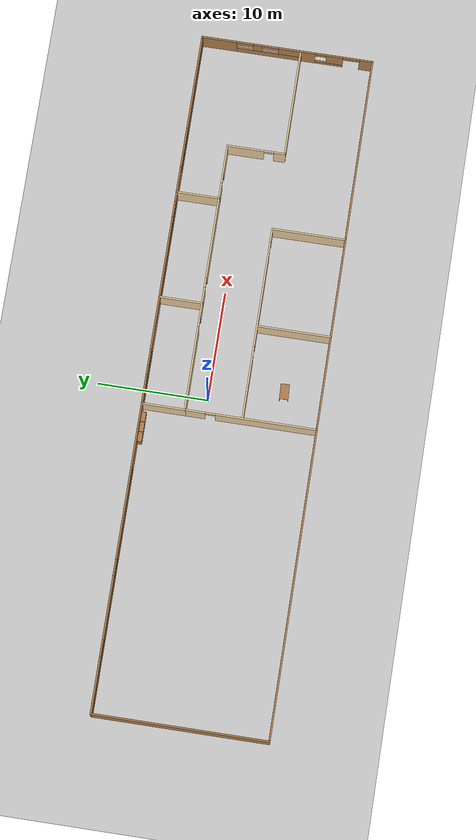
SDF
<sdf version="1.6">
 <world name="default">
  <model name="ground_plane">
   <static>1</static>
   <link name="link">
    <collision name="collision">
     <geometry><plane><normal>0 0 1</normal><size>100 100</size></plane></geometry>
     <surface><friction><ode><mu>100</mu><mu2>50</mu2></ode></friction></surface>
    </collision>
    <visual name="visual">
     <cast_shadows>0</cast_shadows>
     <geometry><plane><normal>0 0 1</normal><size>100 100</size></plane></geometry>
     <material>
      <script><uri>file://media/materials/scripts/gazebo.material</uri><name>Gazebo/Grey</name></script>
     </material>
    </visual>
   </link>
  </model>
  <model name="mymodel_0">
   <pose>1.7436 -2.15546 0 0 -0 0</pose>
   <link name="Wall_119">
    <pose>21.35 1.375 0 0 0 -1.5708</pose>
    <visual name="Wall_119_Visual_0">
     <pose>-0.987502 0 1.25 0 -0 0</pose>
     <geometry><box><size>3.425 0.15 2.5</size></box></geometry>
     <material>
      <script><uri>file://media/materials/scripts/gazebo.material</uri><name>Gazebo/Grey</name></script>
      <ambient>0.921569 0.807843 0.615686 1</ambient>
     </material>
    </visual>
    <collision name="Wall_119_Collision_0">
     <geometry><box><size>3.425 0.15 2.5</size></box></geometry>
     <pose>-0.987502 0 1.25 0 -0 0</pose>
    </collision>
    <visual name="Wall_119_Visual_1">
     <pose>2.1625 0 1.25 0 -0 0</pose>
     <geometry><box><size>1.075 0.15 2.5</size></box></geometry>
     <material>
      <script><uri>file://media/materials/scripts/gazebo.material</uri><name>Gazebo/Grey</name></script>
      <ambient>0.921569 0.807843 0.615686 1</ambient>
     </material>
    </visual>
    <collision name="Wall_119_Collision_1">
     <geometry><box><size>1.075 0.15 2.5</size></box></geometry>
     <pose>2.1625 0 1.25 0 -0 0</pose>
    </collision>
    <visual name="Wall_119_Visual_2">
     <pose>1.175 0 2.25 0 -0 0</pose>
     <geometry><box><size>0.9 0.15 0.5</size></box></geometry>
     <material>
      <script><uri>file://media/materials/scripts/gazebo.material</uri><name>Gazebo/Grey</name></script>
      <ambient>0.921569 0.807843 0.615686 1</ambient>
     </material>
    </visual>
    <collision name="Wall_119_Collision_2">
     <geometry><box><size>0.9 0.15 0.5</size></box></geometry>
     <pose>1.175 0 2.25 0 -0 0</pose>
    </collision>
   </link>
   <link name="Wall_123">
    <collision name="Wall_123_Collision">
     <geometry><box><size>10 0.15 2.5</size></box></geometry>
     <pose>0 0 1.25 0 -0 0</pose>
    </collision>
    <visual name="Wall_123_Visual">
     <pose>0 0 1.25 0 -0 0</pose>
     <geometry><box><size>10 0.15 2.5</size></box></geometry>
     <material>
      <script><uri>file://media/materials/scripts/gazebo.material</uri><name>Gazebo/Grey</name></script>
      <ambient>0.921569 0.807843 0.615686 1</ambient>
     </material>
    </visual>
    <pose>26.275 -1.25 0 0 -0 0</pose>
   </link>
   <link name="Wall_125">
    <pose>1.575 7.85 0 0 -0 3.14159</pose>
    <visual name="Wall_125_Visual_0">
     <pose>-2.52053 0 1.25 0 -0 0</pose>
     <geometry><box><size>4.95895 0.15 2.5</size></box></geometry>
     <material>
      <script><uri>file://media/materials/scripts/gazebo.material</uri><name>Gazebo/Wood</name></script>
      <ambient>0.996078 0.47451 0.0196078 1</ambient>
     </material>
    </visual>
    <collision name="Wall_125_Collision_0">
     <geometry><box><size>4.95895 0.15 2.5</size></box></geometry>
     <pose>-2.52053 0 1.25 0 -0 0</pose>
    </collision>
    <visual name="Wall_125_Visual_1">
     <pose>2.47947 0 0.5 0 -0 0</pose>
     <geometry><box><size>5.04105 0.15 1</size></box></geometry>
     <material>
      <script><uri>file://media/materials/scripts/gazebo.material</uri><name>Gazebo/Wood</name></script>
      <ambient>0.996078 0.47451 0.0196078 1</ambient>
     </material>
    </visual>
    <collision name="Wall_125_Collision_1">
     <geometry><box><size>5.04105 0.15 1</size></box></geometry>
     <pose>2.47947 0 0.5 0 -0 0</pose>
    </collision>
    <visual name="Wall_125_Visual_2">
     <pose>1.88216 0 1.75 0 -0 0</pose>
     <geometry><box><size>0.846424 0.15 1.5</size></box></geometry>
     <material>
      <script><uri>file://media/materials/scripts/gazebo.material</uri><name>Gazebo/Wood</name></script>
      <ambient>0.996078 0.47451 0.0196078 1</ambient>
     </material>
    </visual>
    <collision name="Wall_125_Collision_2">
     <geometry><box><size>0.846424 0.15 1.5</size></box></geometry>
     <pose>1.88216 0 1.75 0 -0 0</pose>
    </collision>
    <visual name="Wall_125_Visual_3">
     <pose>4.40268 0 1.75 0 -0 0</pose>
     <geometry><box><size>1.19463 0.15 1.5</size></box></geometry>
     <material>
      <script><uri>file://media/materials/scripts/gazebo.material</uri><name>Gazebo/Wood</name></script>
      <ambient>0.996078 0.47451 0.0196078 1</ambient>
     </material>
    </visual>
    <collision name="Wall_125_Collision_3">
     <geometry><box><size>1.19463 0.15 1.5</size></box></geometry>
     <pose>4.40268 0 1.75 0 -0 0</pose>
    </collision>
    <visual name="Wall_125_Visual_4">
     <pose>0.708946 0 2.15 0 -0 0</pose>
     <geometry><box><size>1.5 0.15 0.7</size></box></geometry>
     <material>
      <script><uri>file://media/materials/scripts/gazebo.material</uri><name>Gazebo/Wood</name></script>
      <ambient>0.996078 0.47451 0.0196078 1</ambient>
     </material>
    </visual>
    <collision name="Wall_125_Collision_4">
     <geometry><box><size>1.5 0.15 0.7</size></box></geometry>
     <pose>0.708946 0 2.15 0 -0 0</pose>
    </collision>
    <visual name="Wall_125_Visual_5">
     <pose>3.05537 0 2.15 0 -0 0</pose>
     <geometry><box><size>1.5 0.15 0.7</size></box></geometry>
     <material>
      <script><uri>file://media/materials/scripts/gazebo.material</uri><name>Gazebo/Wood</name></script>
      <ambient>0.996078 0.47451 0.0196078 1</ambient>
     </material>
    </visual>
    <collision name="Wall_125_Collision_5">
     <geometry><box><size>1.5 0.15 0.7</size></box></geometry>
     <pose>3.05537 0 2.15 0 -0 0</pose>
    </collision>
   </link>
   <link name="Wall_127">
    <collision name="Wall_127_Collision">
     <geometry><box><size>4 0.15 2.5</size></box></geometry>
     <pose>0 0 1.25 0 -0 0</pose>
    </collision>
    <visual name="Wall_127_Visual">
     <pose>0 0 1.25 0 -0 0</pose>
     <geometry><box><size>4 0.15 2.5</size></box></geometry>
     <material>
      <script><uri>file://media/materials/scripts/gazebo.material</uri><name>Gazebo/Grey</name></script>
      <ambient>0.921569 0.807843 0.615686 1</ambient>
     </material>
    </visual>
    <pose>-3.35 5.925 0 0 0 -1.5708</pose>
   </link>
   <link name="Wall_129">
    <pose>1.575 4 0 0 -0 0</pose>
    <visual name="Wall_129_Visual_0">
     <pose>-1.15906 0 1.25 0 -0 0</pose>
     <geometry><box><size>7.68187 0.15 2.5</size></box></geometry>
     <material>
      <script><uri>file://media/materials/scripts/gazebo.material</uri><name>Gazebo/Grey</name></script>
      <ambient>0.921569 0.807843 0.615686 1</ambient>
     </material>
    </visual>
    <collision name="Wall_129_Collision_0">
     <geometry><box><size>7.68187 0.15 2.5</size></box></geometry>
     <pose>-1.15906 0 1.25 0 -0 0</pose>
    </collision>
    <visual name="Wall_129_Visual_1">
     <pose>4.29094 0 1.25 0 -0 0</pose>
     <geometry><box><size>1.41813 0.15 2.5</size></box></geometry>
     <material>
      <script><uri>file://media/materials/scripts/gazebo.material</uri><name>Gazebo/Grey</name></script>
      <ambient>0.921569 0.807843 0.615686 1</ambient>
     </material>
    </visual>
    <collision name="Wall_129_Collision_1">
     <geometry><box><size>1.41813 0.15 2.5</size></box></geometry>
     <pose>4.29094 0 1.25 0 -0 0</pose>
    </collision>
    <visual name="Wall_129_Visual_2">
     <pose>3.13187 0 2.25 0 -0 0</pose>
     <geometry><box><size>0.9 0.15 0.5</size></box></geometry>
     <material>
      <script><uri>file://media/materials/scripts/gazebo.material</uri><name>Gazebo/Grey</name></script>
      <ambient>0.921569 0.807843 0.615686 1</ambient>
     </material>
    </visual>
    <collision name="Wall_129_Collision_2">
     <geometry><box><size>0.9 0.15 0.5</size></box></geometry>
     <pose>3.13187 0 2.25 0 -0 0</pose>
    </collision>
   </link>
   <link name="Wall_144">
    <pose>-17.275 7.85 0 0 -0 3.14159</pose>
    <visual name="Wall_144_Visual_0">
     <pose>-11.0233 0 1.25 0 -0 0</pose>
     <geometry><box><size>5.95337 0.15 2.5</size></box></geometry>
     <material>
      <script><uri>file://media/materials/scripts/gazebo.material</uri><name>Gazebo/Wood</name></script>
      <ambient>0.996078 0.47451 0.0196078 1</ambient>
     </material>
    </visual>
    <collision name="Wall_144_Collision_0">
     <geometry><box><size>5.95337 0.15 2.5</size></box></geometry>
     <pose>-11.0233 0 1.25 0 -0 0</pose>
    </collision>
    <visual name="Wall_144_Visual_1">
     <pose>2.97669 0 0.5 0 -0 0</pose>
     <geometry><box><size>22.0466 0.15 1</size></box></geometry>
     <material>
      <script><uri>file://media/materials/scripts/gazebo.material</uri><name>Gazebo/Wood</name></script>
      <ambient>0.996078 0.47451 0.0196078 1</ambient>
     </material>
    </visual>
    <collision name="Wall_144_Collision_1">
     <geometry><box><size>22.0466 0.15 1</size></box></geometry>
     <pose>2.97669 0 0.5 0 -0 0</pose>
    </collision>
    <visual name="Wall_144_Visual_2">
     <pose>-3.18177 0 1.75 0 -0 0</pose>
     <geometry><box><size>6.72973 0.15 1.5</size></box></geometry>
     <material>
      <script><uri>file://media/materials/scripts/gazebo.material</uri><name>Gazebo/Wood</name></script>
      <ambient>0.996078 0.47451 0.0196078 1</ambient>
     </material>
    </visual>
    <collision name="Wall_144_Collision_2">
     <geometry><box><size>6.72973 0.15 1.5</size></box></geometry>
     <pose>-3.18177 0 1.75 0 -0 0</pose>
    </collision>
    <visual name="Wall_144_Visual_3">
     <pose>4.53578 0 1.75 0 -0 0</pose>
     <geometry><box><size>5.70537 0.15 1.5</size></box></geometry>
     <material>
      <script><uri>file://media/materials/scripts/gazebo.material</uri><name>Gazebo/Wood</name></script>
      <ambient>0.996078 0.47451 0.0196078 1</ambient>
     </material>
    </visual>
    <collision name="Wall_144_Collision_3">
     <geometry><box><size>5.70537 0.15 1.5</size></box></geometry>
     <pose>4.53578 0 1.75 0 -0 0</pose>
    </collision>
    <visual name="Wall_144_Visual_4">
     <pose>11.4442 0 1.75 0 -0 0</pose>
     <geometry><box><size>5.11153 0.15 1.5</size></box></geometry>
     <material>
      <script><uri>file://media/materials/scripts/gazebo.material</uri><name>Gazebo/Wood</name></script>
      <ambient>0.996078 0.47451 0.0196078 1</ambient>
     </material>
    </visual>
    <collision name="Wall_144_Collision_4">
     <geometry><box><size>5.11153 0.15 1.5</size></box></geometry>
     <pose>11.4442 0 1.75 0 -0 0</pose>
    </collision>
    <visual name="Wall_144_Visual_5">
     <pose>-7.29663 0 2.15 0 -0 0</pose>
     <geometry><box><size>1.5 0.15 0.7</size></box></geometry>
     <material>
      <script><uri>file://media/materials/scripts/gazebo.material</uri><name>Gazebo/Wood</name></script>
      <ambient>0.996078 0.47451 0.0196078 1</ambient>
     </material>
    </visual>
    <collision name="Wall_144_Collision_5">
     <geometry><box><size>1.5 0.15 0.7</size></box></geometry>
     <pose>-7.29663 0 2.15 0 -0 0</pose>
    </collision>
    <visual name="Wall_144_Visual_6">
     <pose>0.933096 0 2.15 0 -0 0</pose>
     <geometry><box><size>1.5 0.15 0.7</size></box></geometry>
     <material>
      <script><uri>file://media/materials/scripts/gazebo.material</uri><name>Gazebo/Wood</name></script>
      <ambient>0.996078 0.47451 0.0196078 1</ambient>
     </material>
    </visual>
    <collision name="Wall_144_Collision_6">
     <geometry><box><size>1.5 0.15 0.7</size></box></geometry>
     <pose>0.933096 0 2.15 0 -0 0</pose>
    </collision>
    <visual name="Wall_144_Visual_7">
     <pose>8.13847 0 2.15 0 -0 0</pose>
     <geometry><box><size>1.5 0.15 0.7</size></box></geometry>
     <material>
      <script><uri>file://media/materials/scripts/gazebo.material</uri><name>Gazebo/Wood</name></script>
      <ambient>0.996078 0.47451 0.0196078 1</ambient>
     </material>
    </visual>
    <collision name="Wall_144_Collision_7">
     <geometry><box><size>1.5 0.15 0.7</size></box></geometry>
     <pose>8.13847 0 2.15 0 -0 0</pose>
    </collision>
   </link>
   <link name="Wall_145">
    <collision name="Wall_145_Collision">
     <geometry><box><size>15.85 0.15 2.5</size></box></geometry>
     <pose>0 0 1.25 0 -0 0</pose>
    </collision>
    <visual name="Wall_145_Visual">
     <pose>0 0 1.25 0 -0 0</pose>
     <geometry><box><size>15.85 0.15 2.5</size></box></geometry>
     <material>
      <script><uri>file://media/materials/scripts/gazebo.material</uri><name>Gazebo/Wood</name></script>
      <ambient>0.996078 0.47451 0.0196078 1</ambient>
     </material>
    </visual>
    <pose>-31.2 0 0 0 0 -1.5708</pose>
   </link>
   <link name="Wall_148">
    <pose>-3.35 -1.925 0 0 0 -1.5708</pose>
    <visual name="Wall_148_Visual_0">
     <pose>-5.0473 0 1.25 0 -0 0</pose>
     <geometry><box><size>1.90541 0.15 2.5</size></box></geometry>
     <material>
      <script><uri>file://media/materials/scripts/gazebo.material</uri><name>Gazebo/Grey</name></script>
      <ambient>0.921569 0.807843 0.615686 1</ambient>
     </material>
    </visual>
    <collision name="Wall_148_Collision_0">
     <geometry><box><size>1.90541 0.15 2.5</size></box></geometry>
     <pose>-5.0473 0 1.25 0 -0 0</pose>
    </collision>
    <visual name="Wall_148_Visual_1">
     <pose>1.4027 0 1.25 0 -0 0</pose>
     <geometry><box><size>9.19459 0.15 2.5</size></box></geometry>
     <material>
      <script><uri>file://media/materials/scripts/gazebo.material</uri><name>Gazebo/Grey</name></script>
      <ambient>0.921569 0.807843 0.615686 1</ambient>
     </material>
    </visual>
    <collision name="Wall_148_Collision_1">
     <geometry><box><size>9.19459 0.15 2.5</size></box></geometry>
     <pose>1.4027 0 1.25 0 -0 0</pose>
    </collision>
    <visual name="Wall_148_Visual_2">
     <pose>-3.64459 0 2.25 0 -0 0</pose>
     <geometry><box><size>0.9 0.15 0.5</size></box></geometry>
     <material>
      <script><uri>file://media/materials/scripts/gazebo.material</uri><name>Gazebo/Grey</name></script>
      <ambient>0.921569 0.807843 0.615686 1</ambient>
     </material>
    </visual>
    <collision name="Wall_148_Collision_2">
     <geometry><box><size>0.9 0.15 0.5</size></box></geometry>
     <pose>-3.64459 0 2.25 0 -0 0</pose>
    </collision>
   </link>
   <link name="Wall_160">
    <pose>5.52431 -1.18597 0 0 0 -3e-06</pose>
    <visual name="Wall_160_Visual_0">
     <pose>-5.96657 0 1.25 0 -0 0</pose>
     <geometry><box><size>5.67479 0.15 2.5</size></box></geometry>
     <material>
      <script><uri>file://media/materials/scripts/gazebo.material</uri><name>Gazebo/Grey</name></script>
      <ambient>0.921569 0.807843 0.615686 1</ambient>
     </material>
    </visual>
    <collision name="Wall_160_Collision_0">
     <geometry><box><size>5.67479 0.15 2.5</size></box></geometry>
     <pose>-5.96657 0 1.25 0 -0 0</pose>
    </collision>
    <visual name="Wall_160_Visual_1">
     <pose>2.18678 0 1.25 0 -0 0</pose>
     <geometry><box><size>8.83193 0.15 2.5</size></box></geometry>
     <material>
      <script><uri>file://media/materials/scripts/gazebo.material</uri><name>Gazebo/Grey</name></script>
      <ambient>0.921569 0.807843 0.615686 1</ambient>
     </material>
    </visual>
    <collision name="Wall_160_Collision_1">
     <geometry><box><size>8.83193 0.15 2.5</size></box></geometry>
     <pose>2.18678 0 1.25 0 -0 0</pose>
    </collision>
    <visual name="Wall_160_Visual_2">
     <pose>8.15336 0 1.25 0 -0 0</pose>
     <geometry><box><size>1.30122 0.15 2.5</size></box></geometry>
     <material>
      <script><uri>file://media/materials/scripts/gazebo.material</uri><name>Gazebo/Grey</name></script>
      <ambient>0.921569 0.807843 0.615686 1</ambient>
     </material>
    </visual>
    <collision name="Wall_160_Collision_2">
     <geometry><box><size>1.30122 0.15 2.5</size></box></geometry>
     <pose>8.15336 0 1.25 0 -0 0</pose>
    </collision>
    <visual name="Wall_160_Visual_3">
     <pose>-2.67918 0 2.25 0 -0 0</pose>
     <geometry><box><size>0.9 0.15 0.5</size></box></geometry>
     <material>
      <script><uri>file://media/materials/scripts/gazebo.material</uri><name>Gazebo/Grey</name></script>
      <ambient>0.921569 0.807843 0.615686 1</ambient>
     </material>
    </visual>
    <collision name="Wall_160_Collision_3">
     <geometry><box><size>0.9 0.15 0.5</size></box></geometry>
     <pose>-2.67918 0 2.25 0 -0 0</pose>
    </collision>
    <visual name="Wall_160_Visual_4">
     <pose>7.05275 0 2.25 0 -0 0</pose>
     <geometry><box><size>0.9 0.15 0.5</size></box></geometry>
     <material>
      <script><uri>file://media/materials/scripts/gazebo.material</uri><name>Gazebo/Grey</name></script>
      <ambient>0.921569 0.807843 0.615686 1</ambient>
     </material>
    </visual>
    <collision name="Wall_160_Collision_4">
     <geometry><box><size>0.9 0.15 0.5</size></box></geometry>
     <pose>7.05275 0 2.25 0 -0 0</pose>
    </collision>
   </link>
   <link name="Wall_166">
    <pose>31.2 -4.55 0 0 0 -1.5708</pose>
    <visual name="Wall_166_Visual_0">
     <pose>-2.6617 0 1.25 0 -0 0</pose>
     <geometry><box><size>1.4266 0.15 2.5</size></box></geometry>
     <material>
      <script><uri>file://media/materials/scripts/gazebo.material</uri><name>Gazebo/Wood</name></script>
      <ambient>0.996078 0.47451 0.0196078 1</ambient>
     </material>
    </visual>
    <collision name="Wall_166_Collision_0">
     <geometry><box><size>1.4266 0.15 2.5</size></box></geometry>
     <pose>-2.6617 0 1.25 0 -0 0</pose>
    </collision>
    <visual name="Wall_166_Visual_1">
     <pose>2.74194 0 1.25 0 -0 0</pose>
     <geometry><box><size>1.26611 0.15 2.5</size></box></geometry>
     <material>
      <script><uri>file://media/materials/scripts/gazebo.material</uri><name>Gazebo/Wood</name></script>
      <ambient>0.996078 0.47451 0.0196078 1</ambient>
     </material>
    </visual>
    <collision name="Wall_166_Collision_1">
     <geometry><box><size>1.26611 0.15 2.5</size></box></geometry>
     <pose>2.74194 0 1.25 0 -0 0</pose>
    </collision>
    <visual name="Wall_166_Visual_2">
     <pose>-0.669753 0 0.25 0 -0 0</pose>
     <geometry><box><size>2.55729 0.15 0.5</size></box></geometry>
     <material>
      <script><uri>file://media/materials/scripts/gazebo.material</uri><name>Gazebo/Wood</name></script>
      <ambient>0.996078 0.47451 0.0196078 1</ambient>
     </material>
    </visual>
    <collision name="Wall_166_Collision_2">
     <geometry><box><size>2.55729 0.15 0.5</size></box></geometry>
     <pose>-0.669753 0 0.25 0 -0 0</pose>
    </collision>
    <visual name="Wall_166_Visual_3">
     <pose>-0.169753 0 1.5 0 -0 0</pose>
     <geometry><box><size>1.55729 0.15 2</size></box></geometry>
     <material>
      <script><uri>file://media/materials/scripts/gazebo.material</uri><name>Gazebo/Wood</name></script>
      <ambient>0.996078 0.47451 0.0196078 1</ambient>
     </material>
    </visual>
    <collision name="Wall_166_Collision_3">
     <geometry><box><size>1.55729 0.15 2</size></box></geometry>
     <pose>-0.169753 0 1.5 0 -0 0</pose>
    </collision>
    <visual name="Wall_166_Visual_4">
     <pose>-1.4484 0 2.25 0 -0 0</pose>
     <geometry><box><size>1 0.15 0.5</size></box></geometry>
     <material>
      <script><uri>file://media/materials/scripts/gazebo.material</uri><name>Gazebo/Wood</name></script>
      <ambient>0.996078 0.47451 0.0196078 1</ambient>
     </material>
    </visual>
    <collision name="Wall_166_Collision_4">
     <geometry><box><size>1 0.15 0.5</size></box></geometry>
     <pose>-1.4484 0 2.25 0 -0 0</pose>
    </collision>
    <visual name="Wall_166_Visual_5">
     <pose>1.35889 0 2.25 0 -0 0</pose>
     <geometry><box><size>1.5 0.15 0.5</size></box></geometry>
     <material>
      <script><uri>file://media/materials/scripts/gazebo.material</uri><name>Gazebo/Wood</name></script>
      <ambient>0.996078 0.47451 0.0196078 1</ambient>
     </material>
    </visual>
    <collision name="Wall_166_Collision_5">
     <geometry><box><size>1.5 0.15 0.5</size></box></geometry>
     <pose>1.35889 0 2.25 0 -0 0</pose>
    </collision>
   </link>
   <link name="Wall_170">
    <collision name="Wall_170_Collision">
     <geometry><box><size>6.814 0.15 2.5</size></box></geometry>
     <pose>0 0 1.25 0 -0 0</pose>
    </collision>
    <visual name="Wall_170_Visual">
     <pose>0 0 1.25 0 -0 0</pose>
     <geometry><box><size>6.814 0.15 2.5</size></box></geometry>
     <material>
      <script><uri>file://media/materials/scripts/gazebo.material</uri><name>Gazebo/Grey</name></script>
      <ambient>0.921569 0.807843 0.615686 1</ambient>
     </material>
    </visual>
    <pose>14.253 -4.518 0 0 0 -1.5708</pose>
   </link>
   <link name="Wall_173">
    <collision name="Wall_173_Collision">
     <geometry><box><size>17 0.15 2.5</size></box></geometry>
     <pose>0 0 1.25 0 -0 0</pose>
    </collision>
    <visual name="Wall_173_Visual">
     <pose>0 0 1.25 0 -0 0</pose>
     <geometry><box><size>17 0.15 2.5</size></box></geometry>
     <material>
      <script><uri>file://media/materials/scripts/gazebo.material</uri><name>Gazebo/Wood</name></script>
      <ambient>0.996078 0.47451 0.0196078 1</ambient>
     </material>
    </visual>
    <pose>22.775 -7.85 0 0 -0 3.14159</pose>
   </link>
   <link name="Wall_174">
    <collision name="Wall_174_Collision">
     <geometry><box><size>17.85 0.15 2.5</size></box></geometry>
     <pose>0 0 1.25 0 -0 0</pose>
    </collision>
    <visual name="Wall_174_Visual">
     <pose>0 0 1.25 0 -0 0</pose>
     <geometry><box><size>17.85 0.15 2.5</size></box></geometry>
     <material>
      <script><uri>file://media/materials/scripts/gazebo.material</uri><name>Gazebo/Wood</name></script>
      <ambient>0.996078 0.47451 0.0196078 1</ambient>
     </material>
    </visual>
    <pose>5.5 -7.85 0 0 -0 3.14159</pose>
   </link>
   <link name="Wall_175">
    <collision name="Wall_175_Collision">
     <geometry><box><size>28 0.15 2.5</size></box></geometry>
     <pose>0 0 1.25 0 -0 0</pose>
    </collision>
    <visual name="Wall_175_Visual">
     <pose>0 0 1.25 0 -0 0</pose>
     <geometry><box><size>28 0.15 2.5</size></box></geometry>
     <material>
      <script><uri>file://media/materials/scripts/gazebo.material</uri><name>Gazebo/Wood</name></script>
      <ambient>0.996078 0.47451 0.0196078 1</ambient>
     </material>
    </visual>
    <pose>-17.275 -7.85 0 0 -0 3.14159</pose>
   </link>
   <link name="Wall_177">
    <collision name="Wall_177_Collision">
     <geometry><box><size>6.75 0.15 2.5</size></box></geometry>
     <pose>0 0 1.25 0 -0 0</pose>
    </collision>
    <visual name="Wall_177_Visual">
     <pose>0 0 1.25 0 -0 0</pose>
     <geometry><box><size>6.75 0.15 2.5</size></box></geometry>
     <material>
      <script><uri>file://media/materials/scripts/gazebo.material</uri><name>Gazebo/Grey</name></script>
      <ambient>0.921569 0.807843 0.615686 1</ambient>
     </material>
    </visual>
    <pose>5.18454 -4.51051 0 0 0 -1.5708</pose>
   </link>
   <link name="Wall_29">
    <pose>23.775 7.85 0 0 -0 0</pose>
    <visual name="Wall_29_Visual_0">
     <pose>-6.31514 0 1.25 0 -0 0</pose>
     <geometry><box><size>2.36971 0.15 2.5</size></box></geometry>
     <material>
      <script><uri>file://media/materials/scripts/gazebo.material</uri><name>Gazebo/Wood</name></script>
      <ambient>0.996078 0.47451 0.0196078 1</ambient>
     </material>
    </visual>
    <collision name="Wall_29_Collision_0">
     <geometry><box><size>2.36971 0.15 2.5</size></box></geometry>
     <pose>-6.31514 0 1.25 0 -0 0</pose>
    </collision>
    <visual name="Wall_29_Visual_1">
     <pose>1.18486 0 0.5 0 -0 0</pose>
     <geometry><box><size>12.6303 0.15 1</size></box></geometry>
     <material>
      <script><uri>file://media/materials/scripts/gazebo.material</uri><name>Gazebo/Wood</name></script>
      <ambient>0.996078 0.47451 0.0196078 1</ambient>
     </material>
    </visual>
    <collision name="Wall_29_Collision_1">
     <geometry><box><size>12.6303 0.15 1</size></box></geometry>
     <pose>1.18486 0 0.5 0 -0 0</pose>
    </collision>
    <visual name="Wall_29_Visual_2">
     <pose>-3.26225 0 1.75 0 -0 0</pose>
     <geometry><box><size>0.736064 0.15 1.5</size></box></geometry>
     <material>
      <script><uri>file://media/materials/scripts/gazebo.material</uri><name>Gazebo/Wood</name></script>
      <ambient>0.996078 0.47451 0.0196078 1</ambient>
     </material>
    </visual>
    <collision name="Wall_29_Collision_2">
     <geometry><box><size>0.736064 0.15 1.5</size></box></geometry>
     <pose>-3.26225 0 1.75 0 -0 0</pose>
    </collision>
    <visual name="Wall_29_Visual_3">
     <pose>3.05289 0 1.75 0 -0 0</pose>
     <geometry><box><size>8.89422 0.15 1.5</size></box></geometry>
     <material>
      <script><uri>file://media/materials/scripts/gazebo.material</uri><name>Gazebo/Wood</name></script>
      <ambient>0.996078 0.47451 0.0196078 1</ambient>
     </material>
    </visual>
    <collision name="Wall_29_Collision_3">
     <geometry><box><size>8.89422 0.15 1.5</size></box></geometry>
     <pose>3.05289 0 1.75 0 -0 0</pose>
    </collision>
    <visual name="Wall_29_Visual_4">
     <pose>-4.38029 0 2.15 0 -0 0</pose>
     <geometry><box><size>1.5 0.15 0.7</size></box></geometry>
     <material>
      <script><uri>file://media/materials/scripts/gazebo.material</uri><name>Gazebo/Wood</name></script>
      <ambient>0.996078 0.47451 0.0196078 1</ambient>
     </material>
    </visual>
    <collision name="Wall_29_Collision_4">
     <geometry><box><size>1.5 0.15 0.7</size></box></geometry>
     <pose>-4.38029 0 2.15 0 -0 0</pose>
    </collision>
    <visual name="Wall_29_Visual_5">
     <pose>-2.14422 0 2.15 0 -0 0</pose>
     <geometry><box><size>1.5 0.15 0.7</size></box></geometry>
     <material>
      <script><uri>file://media/materials/scripts/gazebo.material</uri><name>Gazebo/Wood</name></script>
      <ambient>0.996078 0.47451 0.0196078 1</ambient>
     </material>
    </visual>
    <collision name="Wall_29_Collision_5">
     <geometry><box><size>1.5 0.15 0.7</size></box></geometry>
     <pose>-2.14422 0 2.15 0 -0 0</pose>
    </collision>
   </link>
   <link name="Wall_31">
    <pose>31.2 3.3 0 0 0 -1.5708</pose>
    <visual name="Wall_31_Visual_0">
     <pose>-2.97432 0 1.25 0 -0 0</pose>
     <geometry><box><size>3.30136 0.15 2.5</size></box></geometry>
     <material>
      <script><uri>file://media/materials/scripts/gazebo.material</uri><name>Gazebo/Wood</name></script>
      <ambient>0.996078 0.47451 0.0196078 1</ambient>
     </material>
    </visual>
    <collision name="Wall_31_Collision_0">
     <geometry><box><size>3.30136 0.15 2.5</size></box></geometry>
     <pose>-2.97432 0 1.25 0 -0 0</pose>
    </collision>
    <visual name="Wall_31_Visual_1">
     <pose>1.65068 0 0.5 0 -0 0</pose>
     <geometry><box><size>5.94864 0.15 1</size></box></geometry>
     <material>
      <script><uri>file://media/materials/scripts/gazebo.material</uri><name>Gazebo/Wood</name></script>
      <ambient>0.996078 0.47451 0.0196078 1</ambient>
     </material>
    </visual>
    <collision name="Wall_31_Collision_1">
     <geometry><box><size>5.94864 0.15 1</size></box></geometry>
     <pose>1.65068 0 0.5 0 -0 0</pose>
    </collision>
    <visual name="Wall_31_Visual_2">
     <pose>0.58726 0 1.75 0 -0 0</pose>
     <geometry><box><size>0.821797 0.15 1.5</size></box></geometry>
     <material>
      <script><uri>file://media/materials/scripts/gazebo.material</uri><name>Gazebo/Wood</name></script>
      <ambient>0.996078 0.47451 0.0196078 1</ambient>
     </material>
    </visual>
    <collision name="Wall_31_Collision_2">
     <geometry><box><size>0.821797 0.15 1.5</size></box></geometry>
     <pose>0.58726 0 1.75 0 -0 0</pose>
    </collision>
    <visual name="Wall_31_Visual_3">
     <pose>3.56158 0 1.75 0 -0 0</pose>
     <geometry><box><size>2.12684 0.15 1.5</size></box></geometry>
     <material>
      <script><uri>file://media/materials/scripts/gazebo.material</uri><name>Gazebo/Wood</name></script>
      <ambient>0.996078 0.47451 0.0196078 1</ambient>
     </material>
    </visual>
    <collision name="Wall_31_Collision_3">
     <geometry><box><size>2.12684 0.15 1.5</size></box></geometry>
     <pose>3.56158 0 1.75 0 -0 0</pose>
    </collision>
    <visual name="Wall_31_Visual_4">
     <pose>-0.573638 0 2.15 0 -0 0</pose>
     <geometry><box><size>1.5 0.15 0.7</size></box></geometry>
     <material>
      <script><uri>file://media/materials/scripts/gazebo.material</uri><name>Gazebo/Wood</name></script>
      <ambient>0.996078 0.47451 0.0196078 1</ambient>
     </material>
    </visual>
    <collision name="Wall_31_Collision_4">
     <geometry><box><size>1.5 0.15 0.7</size></box></geometry>
     <pose>-0.573638 0 2.15 0 -0 0</pose>
    </collision>
    <visual name="Wall_31_Visual_5">
     <pose>1.74816 0 2.15 0 -0 0</pose>
     <geometry><box><size>1.5 0.15 0.7</size></box></geometry>
     <material>
      <script><uri>file://media/materials/scripts/gazebo.material</uri><name>Gazebo/Wood</name></script>
      <ambient>0.996078 0.47451 0.0196078 1</ambient>
     </material>
    </visual>
    <collision name="Wall_31_Collision_5">
     <geometry><box><size>1.5 0.15 0.7</size></box></geometry>
     <pose>1.74816 0 2.15 0 -0 0</pose>
    </collision>
   </link>
   <link name="Wall_44">
    <pose>11.425 7.85 0 0 -0 3.14159</pose>
    <visual name="Wall_44_Visual_0">
     <pose>-4.52844 0 1.25 0 -0 0</pose>
     <geometry><box><size>0.943112 0.15 2.5</size></box></geometry>
     <material>
      <script><uri>file://media/materials/scripts/gazebo.material</uri><name>Gazebo/Wood</name></script>
      <ambient>0.996078 0.47451 0.0196078 1</ambient>
     </material>
    </visual>
    <collision name="Wall_44_Collision_0">
     <geometry><box><size>0.943112 0.15 2.5</size></box></geometry>
     <pose>-4.52844 0 1.25 0 -0 0</pose>
    </collision>
    <visual name="Wall_44_Visual_1">
     <pose>0.471556 0 0.5 0 -0 0</pose>
     <geometry><box><size>9.05689 0.15 1</size></box></geometry>
     <material>
      <script><uri>file://media/materials/scripts/gazebo.material</uri><name>Gazebo/Wood</name></script>
      <ambient>0.996078 0.47451 0.0196078 1</ambient>
     </material>
    </visual>
    <collision name="Wall_44_Collision_1">
     <geometry><box><size>9.05689 0.15 1</size></box></geometry>
     <pose>0.471556 0 0.5 0 -0 0</pose>
    </collision>
    <visual name="Wall_44_Visual_2">
     <pose>-2.28802 0 1.75 0 -0 0</pose>
     <geometry><box><size>0.537745 0.15 1.5</size></box></geometry>
     <material>
      <script><uri>file://media/materials/scripts/gazebo.material</uri><name>Gazebo/Wood</name></script>
      <ambient>0.996078 0.47451 0.0196078 1</ambient>
     </material>
    </visual>
    <collision name="Wall_44_Collision_2">
     <geometry><box><size>0.537745 0.15 1.5</size></box></geometry>
     <pose>-2.28802 0 1.75 0 -0 0</pose>
    </collision>
    <visual name="Wall_44_Visual_3">
     <pose>2.24043 0 1.75 0 -0 0</pose>
     <geometry><box><size>5.51914 0.15 1.5</size></box></geometry>
     <material>
      <script><uri>file://media/materials/scripts/gazebo.material</uri><name>Gazebo/Wood</name></script>
      <ambient>0.996078 0.47451 0.0196078 1</ambient>
     </material>
    </visual>
    <collision name="Wall_44_Collision_3">
     <geometry><box><size>5.51914 0.15 1.5</size></box></geometry>
     <pose>2.24043 0 1.75 0 -0 0</pose>
    </collision>
    <visual name="Wall_44_Visual_4">
     <pose>-3.30689 0 2.15 0 -0 0</pose>
     <geometry><box><size>1.5 0.15 0.7</size></box></geometry>
     <material>
      <script><uri>file://media/materials/scripts/gazebo.material</uri><name>Gazebo/Wood</name></script>
      <ambient>0.996078 0.47451 0.0196078 1</ambient>
     </material>
    </visual>
    <collision name="Wall_44_Collision_4">
     <geometry><box><size>1.5 0.15 0.7</size></box></geometry>
     <pose>-3.30689 0 2.15 0 -0 0</pose>
    </collision>
    <visual name="Wall_44_Visual_5">
     <pose>-1.26914 0 2.15 0 -0 0</pose>
     <geometry><box><size>1.5 0.15 0.7</size></box></geometry>
     <material>
      <script><uri>file://media/materials/scripts/gazebo.material</uri><name>Gazebo/Wood</name></script>
      <ambient>0.996078 0.47451 0.0196078 1</ambient>
     </material>
    </visual>
    <collision name="Wall_44_Collision_5">
     <geometry><box><size>1.5 0.15 0.7</size></box></geometry>
     <pose>-1.26914 0 2.15 0 -0 0</pose>
    </collision>
   </link>
   <link name="Wall_45">
    <collision name="Wall_45_Collision">
     <geometry><box><size>4 0.15 2.5</size></box></geometry>
     <pose>0 0 1.25 0 -0 0</pose>
    </collision>
    <visual name="Wall_45_Visual">
     <pose>0 0 1.25 0 -0 0</pose>
     <geometry><box><size>4 0.15 2.5</size></box></geometry>
     <material>
      <script><uri>file://media/materials/scripts/gazebo.material</uri><name>Gazebo/Grey</name></script>
      <ambient>0.921569 0.807843 0.615686 1</ambient>
     </material>
    </visual>
    <pose>6.5 5.925 0 0 0 -1.5708</pose>
   </link>
   <link name="Wall_80">
    <pose>11.425 4 0 0 -0 0</pose>
    <visual name="Wall_80_Visual_0">
     <pose>-4.24375 0 1.25 0 -0 0</pose>
     <geometry><box><size>1.51249 0.15 2.5</size></box></geometry>
     <material>
      <script><uri>file://media/materials/scripts/gazebo.material</uri><name>Gazebo/Grey</name></script>
      <ambient>0.921569 0.807843 0.615686 1</ambient>
     </material>
    </visual>
    <collision name="Wall_80_Collision_0">
     <geometry><box><size>1.51249 0.15 2.5</size></box></geometry>
     <pose>-4.24375 0 1.25 0 -0 0</pose>
    </collision>
    <visual name="Wall_80_Visual_1">
     <pose>1.20625 0 1.25 0 -0 0</pose>
     <geometry><box><size>7.58751 0.15 2.5</size></box></geometry>
     <material>
      <script><uri>file://media/materials/scripts/gazebo.material</uri><name>Gazebo/Grey</name></script>
      <ambient>0.921569 0.807843 0.615686 1</ambient>
     </material>
    </visual>
    <collision name="Wall_80_Collision_1">
     <geometry><box><size>7.58751 0.15 2.5</size></box></geometry>
     <pose>1.20625 0 1.25 0 -0 0</pose>
    </collision>
    <visual name="Wall_80_Visual_2">
     <pose>-3.03751 0 2.25 0 -0 0</pose>
     <geometry><box><size>0.9 0.15 0.5</size></box></geometry>
     <material>
      <script><uri>file://media/materials/scripts/gazebo.material</uri><name>Gazebo/Grey</name></script>
      <ambient>0.921569 0.807843 0.615686 1</ambient>
     </material>
    </visual>
    <collision name="Wall_80_Collision_2">
     <geometry><box><size>0.9 0.15 0.5</size></box></geometry>
     <pose>-3.03751 0 2.25 0 -0 0</pose>
    </collision>
   </link>
   <link name="Wall_81">
    <collision name="Wall_81_Collision">
     <geometry><box><size>4 0.15 2.5</size></box></geometry>
     <pose>0 0 1.25 0 -0 0</pose>
    </collision>
    <visual name="Wall_81_Visual">
     <pose>0 0 1.25 0 -0 0</pose>
     <geometry><box><size>4 0.15 2.5</size></box></geometry>
     <material>
      <script><uri>file://media/materials/scripts/gazebo.material</uri><name>Gazebo/Grey</name></script>
      <ambient>0.921569 0.807843 0.615686 1</ambient>
     </material>
    </visual>
    <pose>16.35 5.925 0 0 -0 1.5708</pose>
   </link>
   <link name="Wall_83">
    <pose>18.85 4 0 0 -0 0</pose>
    <visual name="Wall_83_Visual_0">
     <pose>-1.81995 0 1.25 0 -0 0</pose>
     <geometry><box><size>1.5101 0.15 2.5</size></box></geometry>
     <material>
      <script><uri>file://media/materials/scripts/gazebo.material</uri><name>Gazebo/Grey</name></script>
      <ambient>0.921569 0.807843 0.615686 1</ambient>
     </material>
    </visual>
    <collision name="Wall_83_Collision_0">
     <geometry><box><size>1.5101 0.15 2.5</size></box></geometry>
     <pose>-1.81995 0 1.25 0 -0 0</pose>
    </collision>
    <visual name="Wall_83_Visual_1">
     <pose>1.20505 0 1.25 0 -0 0</pose>
     <geometry><box><size>2.7399 0.15 2.5</size></box></geometry>
     <material>
      <script><uri>file://media/materials/scripts/gazebo.material</uri><name>Gazebo/Grey</name></script>
      <ambient>0.921569 0.807843 0.615686 1</ambient>
     </material>
    </visual>
    <collision name="Wall_83_Collision_1">
     <geometry><box><size>2.7399 0.15 2.5</size></box></geometry>
     <pose>1.20505 0 1.25 0 -0 0</pose>
    </collision>
    <visual name="Wall_83_Visual_2">
     <pose>-0.614896 0 2.25 0 -0 0</pose>
     <geometry><box><size>0.9 0.15 0.5</size></box></geometry>
     <material>
      <script><uri>file://media/materials/scripts/gazebo.material</uri><name>Gazebo/Grey</name></script>
      <ambient>0.921569 0.807843 0.615686 1</ambient>
     </material>
    </visual>
    <collision name="Wall_83_Collision_2">
     <geometry><box><size>0.9 0.15 0.5</size></box></geometry>
     <pose>-0.614896 0 2.25 0 -0 0</pose>
    </collision>
   </link>
   <static>1</static>
  </model>
  <model name="bookshelf_0">
   <static>1</static>
   <link name="bookshelf_0::bookshelf_0::link">
    <inertial><mass>1</mass></inertial>
    <collision name="back">
     <pose>0 0.005 0.6 0 -0 0</pose>
     <geometry><box><size>0.9 0.01 1.2</size></box></geometry>
    </collision>
    <visual name="visual1">
     <pose>0 0.005 0.6 0 -0 0</pose>
     <geometry><box><size>0.9 0.01 1.2</size></box></geometry>
     <material>
      <script><uri>file://media/materials/scripts/gazebo.material</uri><name>Gazebo/Wood</name></script>
     </material>
    </visual>
    <collision name="left_side">
     <pose>0.45 -0.195 0.6 0 -0 0</pose>
     <geometry><box><size>0.02 0.4 1.2</size></box></geometry>
    </collision>
    <visual name="visual2">
     <pose>0.45 -0.195 0.6 0 -0 0</pose>
     <geometry><box><size>0.02 0.4 1.2</size></box></geometry>
     <material>
      <script><uri>file://media/materials/scripts/gazebo.material</uri><name>Gazebo/Wood</name></script>
     </material>
    </visual>
    <collision name="right_side">
     <pose>-0.45 -0.195 0.6 0 -0 0</pose>
     <geometry><box><size>0.02 0.4 1.2</size></box></geometry>
    </collision>
    <visual name="visual3">
     <pose>-0.45 -0.195 0.6 0 -0 0</pose>
     <geometry><box><size>0.02 0.4 1.2</size></box></geometry>
     <material>
      <script><uri>file://media/materials/scripts/gazebo.material</uri><name>Gazebo/Wood</name></script>
     </material>
    </visual>
    <collision name="bottom">
     <pose>0 -0.195 0.03 0 -0 0</pose>
     <geometry><box><size>0.88 0.4 0.06</size></box></geometry>
    </collision>
    <visual name="visual4">
     <pose>0 -0.195 0.03 0 -0 0</pose>
     <geometry><box><size>0.88 0.4 0.06</size></box></geometry>
     <material>
      <script><uri>file://media/materials/scripts/gazebo.material</uri><name>Gazebo/Wood</name></script>
     </material>
    </visual>
    <collision name="top">
     <pose>0 -0.195 1.19 0 -0 0</pose>
     <geometry><box><size>0.88 0.4 0.02</size></box></geometry>
    </collision>
    <visual name="visual5">
     <pose>0 -0.195 1.19 0 -0 0</pose>
     <geometry><box><size>0.88 0.4 0.02</size></box></geometry>
     <material>
      <script><uri>file://media/materials/scripts/gazebo.material</uri><name>Gazebo/Wood</name></script>
     </material>
    </visual>
    <collision name="low_shelf">
     <pose>0 -0.195 0.43 0 -0 0</pose>
     <geometry><box><size>0.88 0.4 0.02</size></box></geometry>
    </collision>
    <visual name="visual6">
     <pose>0 -0.195 0.43 0 -0 0</pose>
     <geometry><box><size>0.88 0.4 0.02</size></box></geometry>
     <material>
      <script><uri>file://media/materials/scripts/gazebo.material</uri><name>Gazebo/Wood</name></script>
     </material>
    </visual>
    <collision name="high_shelf">
     <pose>0 -0.195 0.8 0 -0 0</pose>
     <geometry><box><size>0.88 0.4 0.02</size></box></geometry>
    </collision>
    <visual name="visual7">
     <pose>0 -0.195 0.8 0 -0 0</pose>
     <geometry><box><size>0.88 0.4 0.02</size></box></geometry>
     <material>
      <script><uri>file://media/materials/scripts/gazebo.material</uri><name>Gazebo/Wood</name></script>
     </material>
    </visual>
   </link>
   <pose>-4.58848 5.58592 1.04077 0 -0 0</pose>
  </model>
  <model name="bookshelf_0_clone">
   <static>1</static>
   <link name="bookshelf_0::bookshelf_0::link">
    <inertial><mass>1</mass></inertial>
    <collision name="back">
     <pose>0 0.005 0.6 0 -0 0</pose>
     <geometry><box><size>0.9 0.01 1.2</size></box></geometry>
    </collision>
    <visual name="visual1">
     <pose>0 0.005 0.6 0 -0 0</pose>
     <geometry><box><size>0.9 0.01 1.2</size></box></geometry>
     <material>
      <script><uri>file://media/materials/scripts/gazebo.material</uri><name>Gazebo/Wood</name></script>
     </material>
    </visual>
    <collision name="left_side">
     <pose>0.45 -0.195 0.6 0 -0 0</pose>
     <geometry><box><size>0.02 0.4 1.2</size></box></geometry>
    </collision>
    <visual name="visual2">
     <pose>0.45 -0.195 0.6 0 -0 0</pose>
     <geometry><box><size>0.02 0.4 1.2</size></box></geometry>
     <material>
      <script><uri>file://media/materials/scripts/gazebo.material</uri><name>Gazebo/Wood</name></script>
     </material>
    </visual>
    <collision name="right_side">
     <pose>-0.45 -0.195 0.6 0 -0 0</pose>
     <geometry><box><size>0.02 0.4 1.2</size></box></geometry>
    </collision>
    <visual name="visual3">
     <pose>-0.45 -0.195 0.6 0 -0 0</pose>
     <geometry><box><size>0.02 0.4 1.2</size></box></geometry>
     <material>
      <script><uri>file://media/materials/scripts/gazebo.material</uri><name>Gazebo/Wood</name></script>
     </material>
    </visual>
    <collision name="bottom">
     <pose>0 -0.195 0.03 0 -0 0</pose>
     <geometry><box><size>0.88 0.4 0.06</size></box></geometry>
    </collision>
    <visual name="visual4">
     <pose>0 -0.195 0.03 0 -0 0</pose>
     <geometry><box><size>0.88 0.4 0.06</size></box></geometry>
     <material>
      <script><uri>file://media/materials/scripts/gazebo.material</uri><name>Gazebo/Wood</name></script>
     </material>
    </visual>
    <collision name="top">
     <pose>0 -0.195 1.19 0 -0 0</pose>
     <geometry><box><size>0.88 0.4 0.02</size></box></geometry>
    </collision>
    <visual name="visual5">
     <pose>0 -0.195 1.19 0 -0 0</pose>
     <geometry><box><size>0.88 0.4 0.02</size></box></geometry>
     <material>
      <script><uri>file://media/materials/scripts/gazebo.material</uri><name>Gazebo/Wood</name></script>
     </material>
    </visual>
    <collision name="low_shelf">
     <pose>0 -0.195 0.43 0 -0 0</pose>
     <geometry><box><size>0.88 0.4 0.02</size></box></geometry>
    </collision>
    <visual name="visual6">
     <pose>0 -0.195 0.43 0 -0 0</pose>
     <geometry><box><size>0.88 0.4 0.02</size></box></geometry>
     <material>
      <script><uri>file://media/materials/scripts/gazebo.material</uri><name>Gazebo/Wood</name></script>
     </material>
    </visual>
    <collision name="high_shelf">
     <pose>0 -0.195 0.8 0 -0 0</pose>
     <geometry><box><size>0.88 0.4 0.02</size></box></geometry>
    </collision>
    <visual name="visual7">
     <pose>0 -0.195 0.8 0 -0 0</pose>
     <geometry><box><size>0.88 0.4 0.02</size></box></geometry>
     <material>
      <script><uri>file://media/materials/scripts/gazebo.material</uri><name>Gazebo/Wood</name></script>
     </material>
    </visual>
   </link>
   <pose>-3.67407 5.58213 1.04077 0 -0 0</pose>
  </model>
  <model name="bookshelf_0_clone_clone">
   <static>1</static>
   <link name="bookshelf_0::bookshelf_0::link">
    <inertial><mass>1</mass></inertial>
    <collision name="back">
     <pose>0 0.005 0.6 0 -0 0</pose>
     <geometry><box><size>0.9 0.01 1.2</size></box></geometry>
    </collision>
    <visual name="visual1">
     <pose>0 0.005 0.6 0 -0 0</pose>
     <geometry><box><size>0.9 0.01 1.2</size></box></geometry>
     <material>
      <script><uri>file://media/materials/scripts/gazebo.material</uri><name>Gazebo/Wood</name></script>
     </material>
    </visual>
    <collision name="left_side">
     <pose>0.45 -0.195 0.6 0 -0 0</pose>
     <geometry><box><size>0.02 0.4 1.2</size></box></geometry>
    </collision>
    <visual name="visual2">
     <pose>0.45 -0.195 0.6 0 -0 0</pose>
     <geometry><box><size>0.02 0.4 1.2</size></box></geometry>
     <material>
      <script><uri>file://media/materials/scripts/gazebo.material</uri><name>Gazebo/Wood</name></script>
     </material>
    </visual>
    <collision name="right_side">
     <pose>-0.45 -0.195 0.6 0 -0 0</pose>
     <geometry><box><size>0.02 0.4 1.2</size></box></geometry>
    </collision>
    <visual name="visual3">
     <pose>-0.45 -0.195 0.6 0 -0 0</pose>
     <geometry><box><size>0.02 0.4 1.2</size></box></geometry>
     <material>
      <script><uri>file://media/materials/scripts/gazebo.material</uri><name>Gazebo/Wood</name></script>
     </material>
    </visual>
    <collision name="bottom">
     <pose>0 -0.195 0.03 0 -0 0</pose>
     <geometry><box><size>0.88 0.4 0.06</size></box></geometry>
    </collision>
    <visual name="visual4">
     <pose>0 -0.195 0.03 0 -0 0</pose>
     <geometry><box><size>0.88 0.4 0.06</size></box></geometry>
     <material>
      <script><uri>file://media/materials/scripts/gazebo.material</uri><name>Gazebo/Wood</name></script>
     </material>
    </visual>
    <collision name="top">
     <pose>0 -0.195 1.19 0 -0 0</pose>
     <geometry><box><size>0.88 0.4 0.02</size></box></geometry>
    </collision>
    <visual name="visual5">
     <pose>0 -0.195 1.19 0 -0 0</pose>
     <geometry><box><size>0.88 0.4 0.02</size></box></geometry>
     <material>
      <script><uri>file://media/materials/scripts/gazebo.material</uri><name>Gazebo/Wood</name></script>
     </material>
    </visual>
    <collision name="low_shelf">
     <pose>0 -0.195 0.43 0 -0 0</pose>
     <geometry><box><size>0.88 0.4 0.02</size></box></geometry>
    </collision>
    <visual name="visual6">
     <pose>0 -0.195 0.43 0 -0 0</pose>
     <geometry><box><size>0.88 0.4 0.02</size></box></geometry>
     <material>
      <script><uri>file://media/materials/scripts/gazebo.material</uri><name>Gazebo/Wood</name></script>
     </material>
    </visual>
    <collision name="high_shelf">
     <pose>0 -0.195 0.8 0 -0 0</pose>
     <geometry><box><size>0.88 0.4 0.02</size></box></geometry>
    </collision>
    <visual name="visual7">
     <pose>0 -0.195 0.8 0 -0 0</pose>
     <geometry><box><size>0.88 0.4 0.02</size></box></geometry>
     <material>
      <script><uri>file://media/materials/scripts/gazebo.material</uri><name>Gazebo/Wood</name></script>
     </material>
    </visual>
   </link>
   <pose>-2.75403 5.58407 1.04077 0 -0 0</pose>
  </model>
  <model name="table_clone_0_clone_clone_0_clone">
   <static>0</static>
   <link name="link">
    <collision name="surface">
     <pose>0 0 1 0 -0 0</pose>
     <geometry><box><size>1.5 0.8 0.03</size></box></geometry>
     <surface><friction><ode><mu>0.6</mu><mu2>0.6</mu2></ode></friction></surface>
    </collision>
    <visual name="visual1">
     <pose>0 0 1 0 -0 0</pose>
     <geometry><box><size>1.4 0.8 0.04</size></box></geometry>
     <material>
      <script><uri>file://media/materials/scripts/gazebo.material</uri><name>Gazebo/Wood</name></script>
     </material>
    </visual>
    <collision name="front_left_leg">
     <pose>0.68 0.38 0.5 0 -0 0</pose>
     <geometry><cylinder><radius>0.02</radius><length>1</length></cylinder></geometry>
    </collision>
    <visual name="front_left_leg">
     <pose>0.68 0.38 0.5 0 -0 0</pose>
     <geometry><cylinder><radius>0.02</radius><length>1</length></cylinder></geometry>
     <material>
      <script><uri>file://media/materials/scripts/gazebo.material</uri><name>Gazebo/Grey</name></script>
     </material>
    </visual>
    <collision name="front_right_leg">
     <pose>0.68 -0.38 0.5 0 -0 0</pose>
     <geometry><cylinder><radius>0.02</radius><length>1</length></cylinder></geometry>
    </collision>
    <visual name="front_right_leg">
     <pose>0.68 -0.38 0.5 0 -0 0</pose>
     <geometry><cylinder><radius>0.02</radius><length>1</length></cylinder></geometry>
     <material>
      <script><uri>file://media/materials/scripts/gazebo.material</uri><name>Gazebo/Grey</name></script>
     </material>
    </visual>
    <collision name="back_right_leg">
     <pose>-0.68 -0.38 0.5 0 -0 0</pose>
     <geometry><cylinder><radius>0.02</radius><length>1</length></cylinder></geometry>
    </collision>
    <visual name="back_right_leg">
     <pose>-0.68 -0.38 0.5 0 -0 0</pose>
     <geometry><cylinder><radius>0.02</radius><length>1</length></cylinder></geometry>
     <material>
      <script><uri>file://media/materials/scripts/gazebo.material</uri><name>Gazebo/Grey</name></script>
     </material>
    </visual>
    <collision name="back_left_leg">
     <pose>-0.68 0.38 0.5 0 -0 0</pose>
     <geometry><cylinder><radius>0.02</radius><length>1</length></cylinder></geometry>
    </collision>
    <visual name="back_left_leg">
     <pose>-0.68 0.38 0.5 0 -0 0</pose>
     <geometry><cylinder><radius>0.02</radius><length>1</length></cylinder></geometry>
     <material>
      <script><uri>file://media/materials/scripts/gazebo.material</uri><name>Gazebo/Grey</name></script>
     </material>
    </visual>
    <inertial>
     <inertia><ixx>1</ixx><ixy>0</ixy><ixz>0</ixz><iyy>1</iyy><iyz>0</iyz><izz>1</izz></inertia>
     <mass>1</mass>
    </inertial>
   </link>
   <pose>1.67632 -6.65062 -1e-06 0 2e-06 -3.09728</pose>
  </model>
 </world>
</sdf>
